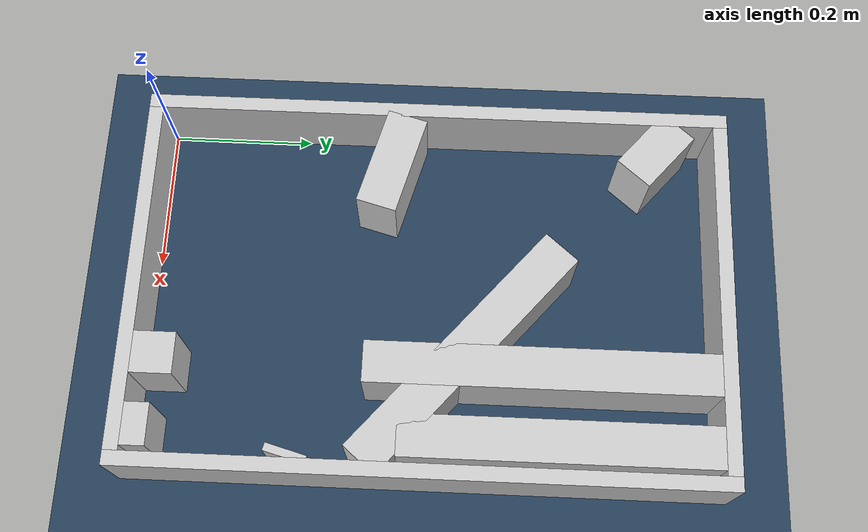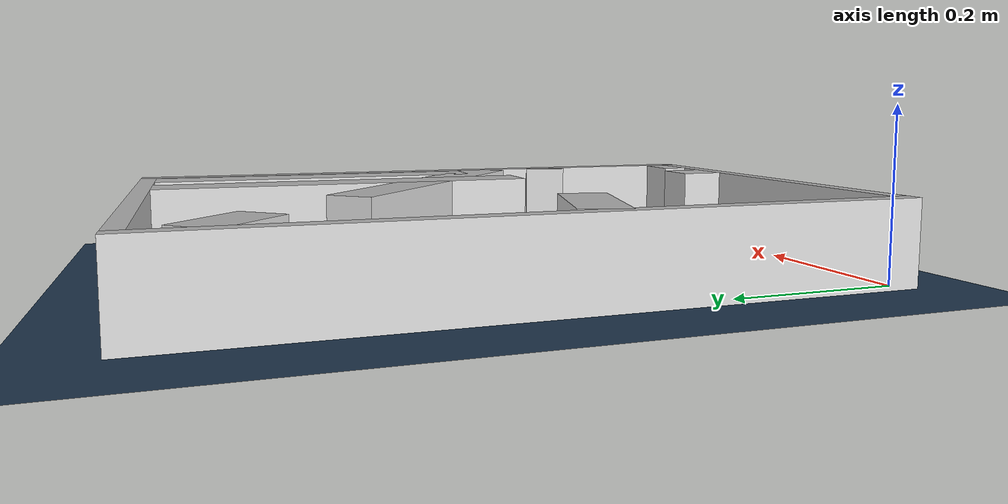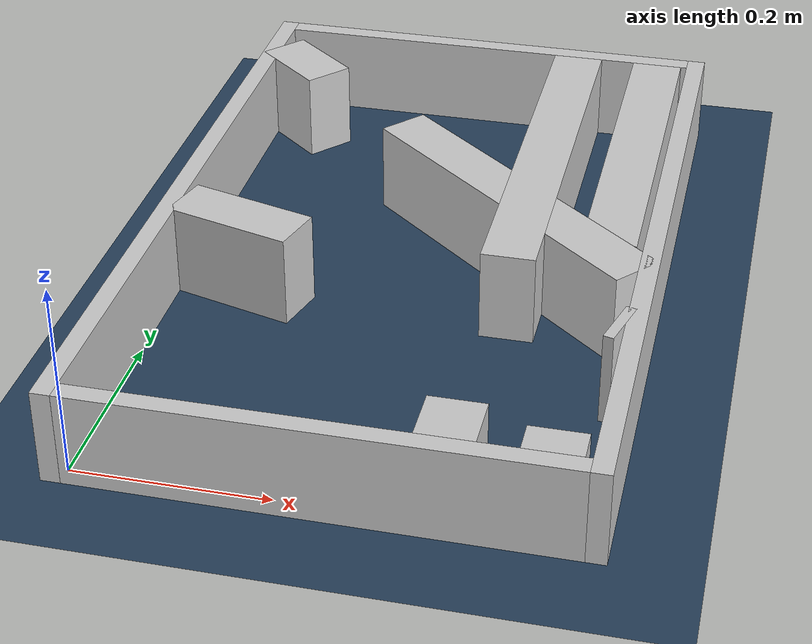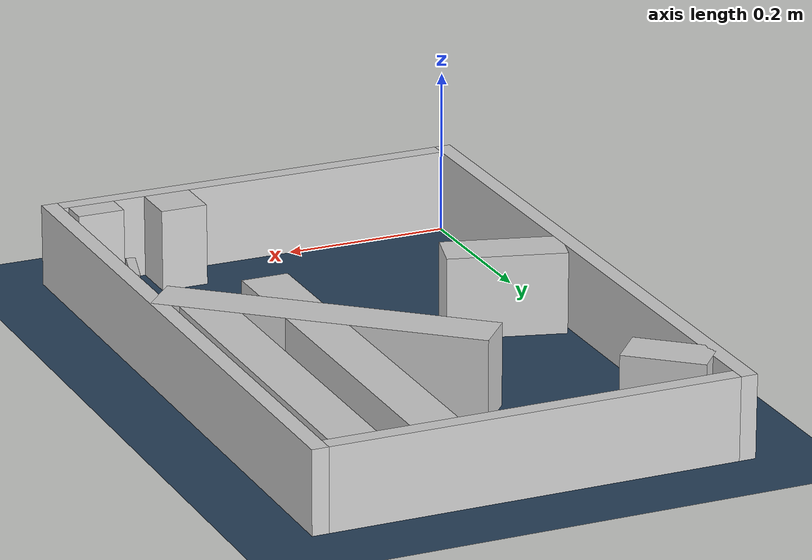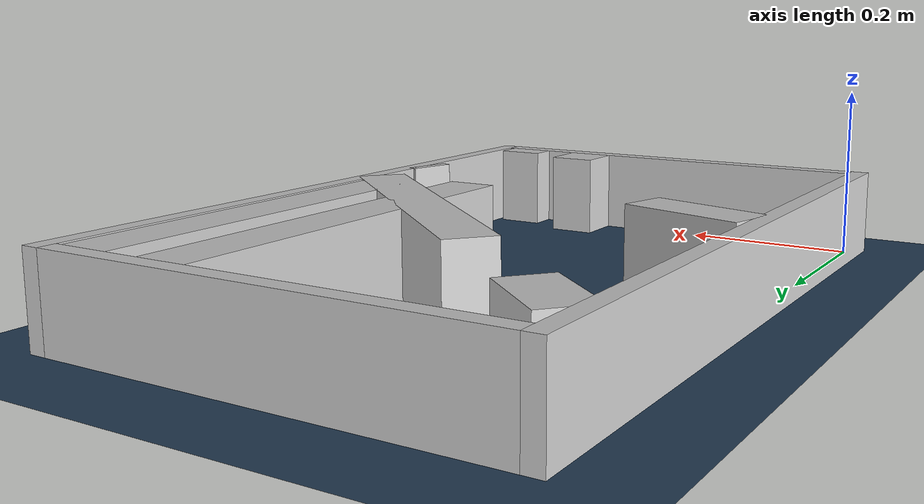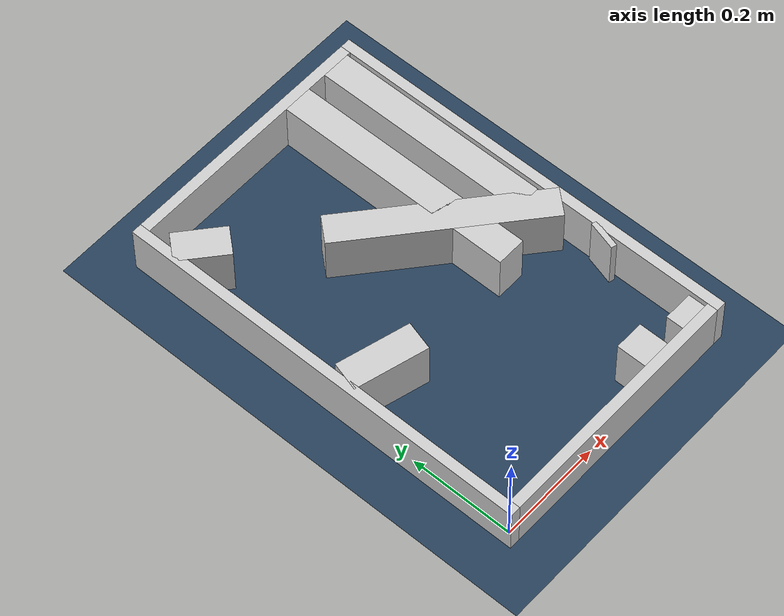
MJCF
<?xml version="1.0" ?>
<mujoco model="generated_real_template">
  <compiler angle="degree"/>
  <option timestep="0.002" integrator="implicitfast" iterations="100" cone="elliptic"/>
  <default>
    <geom density="1"/>
  </default>
  <asset>
    <texture builtin="gradient" height="3072" rgb1="0.3 0.5 0.7" rgb2="0 0 0" type="skybox" width="512"/>
    <texture builtin="checker" height="300" mark="edge" markrgb="0.8 0.8 0.8" name="groundplane" rgb1="0.2 0.3 0.4" rgb2="0.1 0.2 0.3" type="2d" width="300"/>
    <material name="groundplane" reflectance="0.2" texrepeat="5 5" texture="groundplane" texuniform="true"/>
  </asset>
  <worldbody>
    <light dir="0 0 -1" directional="true" pos="0 0 1.5"/>
    <geom name="floor" type="plane" condim="4" friction="0.5 0.005 0.001" material="groundplane" size="0 0 0.05"/>
    <body name="walls">
      <geom name="wall_boundary_left" type="box" condim="4" friction="1.0 0.005 0.0001" rgba="0.8 0.8 0.8 1" pos="-0.010000 0.387500 0.050000" euler="0 0 0.000000" size="0.010000 0.407500 0.050000"/>
      <geom name="wall_boundary_right" type="box" condim="4" friction="1.0 0.005 0.0001" rgba="0.8 0.8 0.8 1" pos="0.500000 0.387500 0.050000" euler="0 0 0.000000" size="0.010000 0.407500 0.050000"/>
      <geom name="wall_boundary_bottom" type="box" condim="4" friction="1.0 0.005 0.0001" rgba="0.8 0.8 0.8 1" pos="0.245000 -0.010000 0.050000" euler="0 0 0.000000" size="0.245000 0.010000 0.050000"/>
      <geom name="wall_boundary_top" type="box" condim="4" friction="1.0 0.005 0.0001" rgba="0.8 0.8 0.8 1" pos="0.245000 0.785000 0.050000" euler="0 0 0.000000" size="0.245000 0.010000 0.050000"/>
      <geom name="wall_inner_1_1" type="box" condim="4" friction="1.0 0.005 0.0001" rgba="0.8 0.8 0.8 1" pos="0.339564 0.435858 0.050000" euler="0 0 139.394303" size="0.198149 0.028500 0.050000"/>
      <geom name="wall_inner_1_2" type="box" condim="4" friction="1.0 0.005 0.0001" rgba="0.8 0.8 0.8 1" pos="0.037554 0.694765 0.050000" euler="0 0 139.394303" size="0.049464 0.028500 0.050000"/>
      <geom name="wall_inner_2_1" type="box" condim="4" friction="1.0 0.005 0.0001" rgba="0.8 0.8 0.8 1" pos="0.454671 0.016691 0.050000" euler="0 0 90.000000" size="0.016691 0.028500 0.050000"/>
      <geom name="wall_inner_2_2" type="box" condim="4" friction="1.0 0.005 0.0001" rgba="0.8 0.8 0.8 1" pos="0.454671 0.563907 0.050000" euler="0 0 90.000000" size="0.211093 0.028500 0.050000"/>
      <geom name="wall_inner_3_1" type="box" condim="4" friction="1.0 0.005 0.0001" rgba="0.8 0.8 0.8 1" pos="0.359005 0.028379 0.050000" euler="0 0 90.000000" size="0.028379 0.028500 0.050000"/>
      <geom name="wall_inner_3_2" type="box" condim="4" friction="1.0 0.005 0.0001" rgba="0.8 0.8 0.8 1" pos="0.359005 0.539319 0.050000" euler="0 0 90.000000" size="0.235681 0.028500 0.050000"/>
      <geom name="wall_inner_4_1" type="box" condim="4" friction="1.0 0.005 0.0001" rgba="0.8 0.8 0.8 1" pos="0.068836 0.327459 0.050000" euler="0 0 -15.445709" size="0.071415 0.028500 0.050000"/>
      <geom name="wall_inner_4_2" type="box" condim="4" friction="1.0 0.005 0.0001" rgba="0.8 0.8 0.8 1" pos="0.484697 0.212555 0.050000" euler="0 0 -15.445709" size="0.005502 0.028500 0.050000"/>
    </body>
  </worldbody>
</mujoco>
